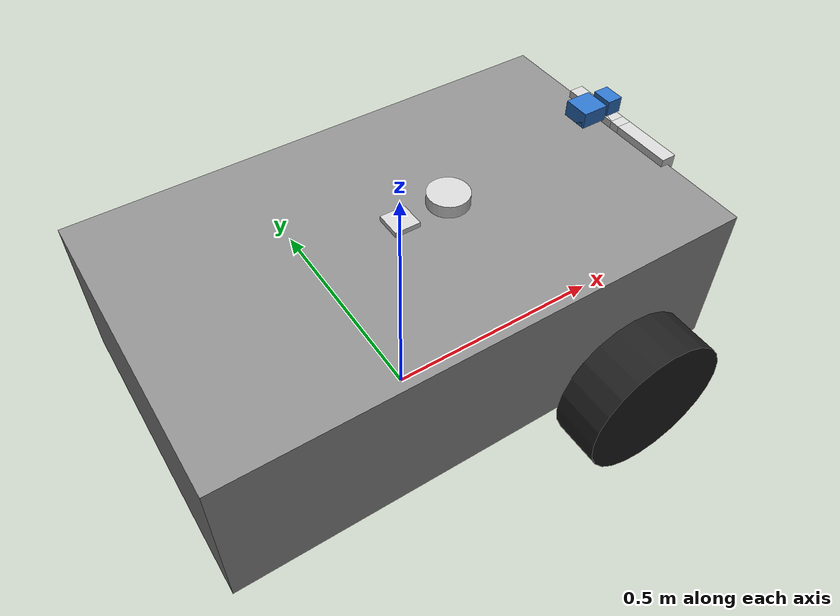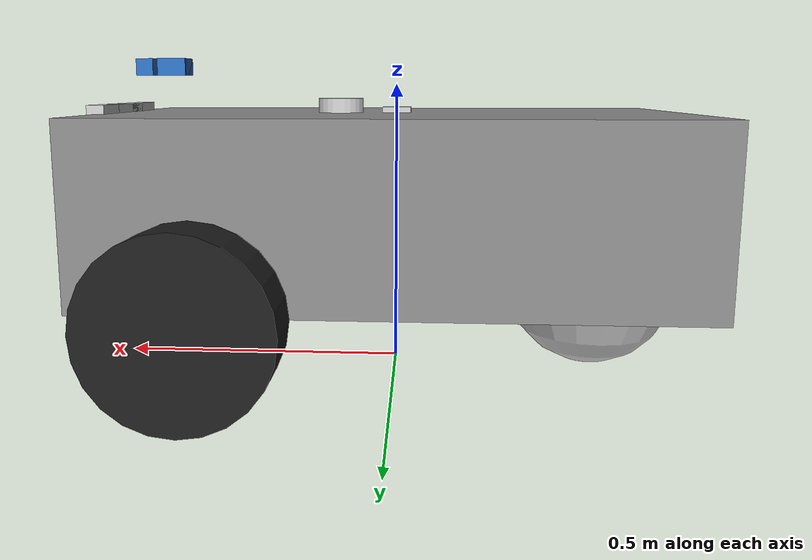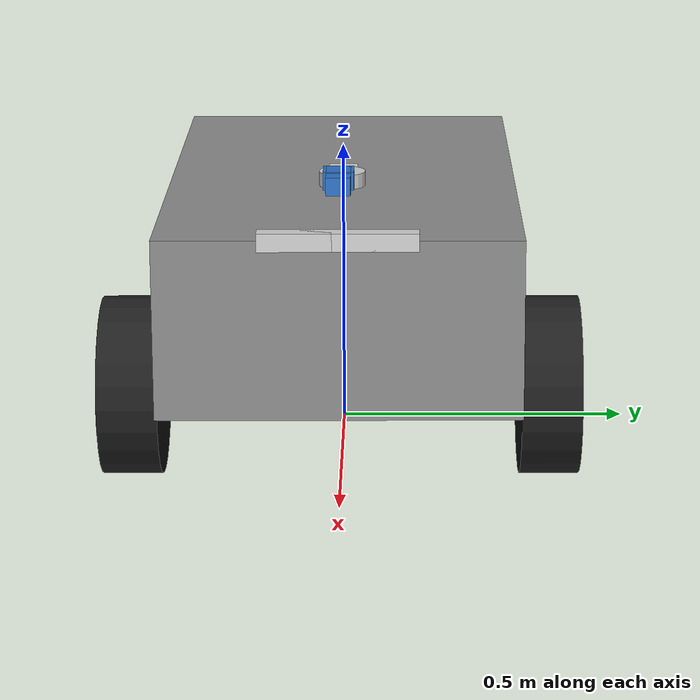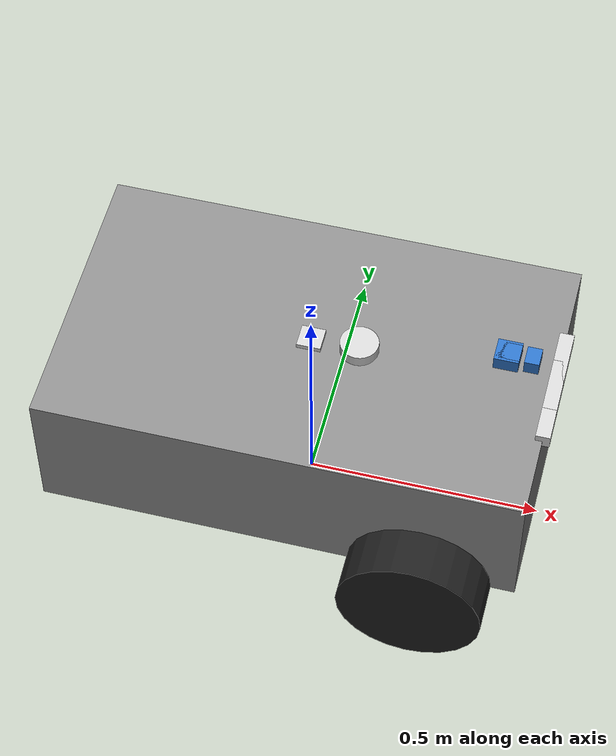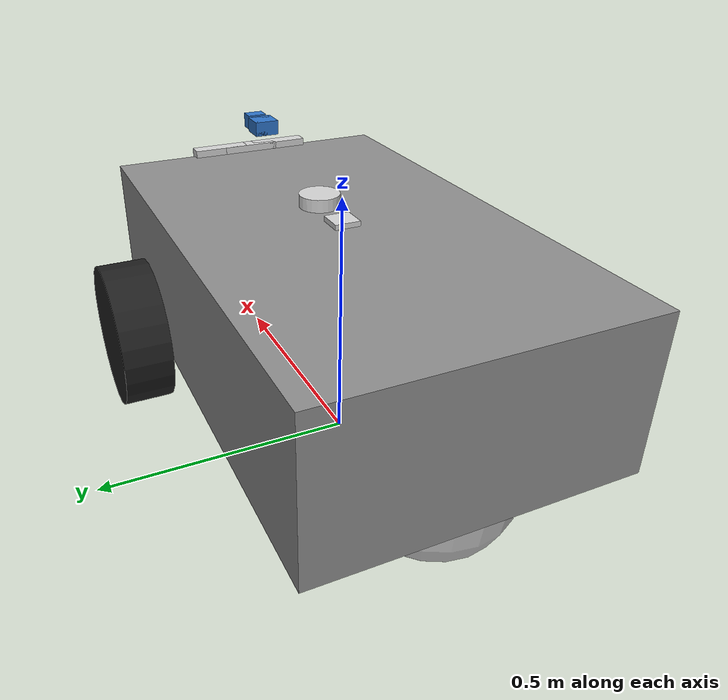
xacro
<?xml version="1.0"?>
<robot xmlns:xacro="http://www.ros.org/wiki/xacro" name="differential_drive_robot">

  <!-- Keep a prefix hook so the model can be reused in multi-robot setups later. -->
  <xacro:property name="prefix" value=""/>
  <xacro:property name="pi_const" value="3.1415926535897931"/>

  <!-- Chassis dimensions. -->
  <xacro:property name="chassis_length" value="1.0"/>
  <xacro:property name="chassis_width" value="0.6"/>
  <xacro:property name="chassis_height" value="0.3"/>

  <!-- Wheel layout. -->
  <xacro:property name="wheel_radius" value="0.15"/>
  <xacro:property name="wheel_width" value="0.10"/>
  <xacro:property name="wheel_x_offset" value="${2.0 * wheel_radius}"/>
  <xacro:property name="wheel_separation" value="${chassis_width + wheel_width}"/>
  <xacro:property name="wheel_y_offset" value="${wheel_separation / 2.0}"/>

  <!-- Sensor layout. -->
  <xacro:property name="caster_radius" value="${wheel_radius}"/>
  <xacro:property name="imu_size_xyz" value="0.05 0.05 0.02"/>
  <xacro:property name="stereo_camera_size_xyz" value="0.03 0.12 0.03"/>
  <xacro:property name="stereo_camera_baseline" value="0.14"/>
  <xacro:property name="stereo_camera_mount_x" value="${chassis_length / 2.0}"/>
  <xacro:property name="stereo_camera_mount_z" value="${wheel_radius + chassis_height}"/>
  <xacro:property name="arducam_pan_initial" value="0.0"/>
  <xacro:property name="arducam_tilt_initial" value="0.0"/>
  <xacro:property name="arducam_horizontal_fov" value="0.78539816339"/>
  <xacro:property name="arducam_pan_mount_x" value="${chassis_length / 2.0 - 0.10}"/>
  <xacro:property name="arducam_pan_mount_z" value="${wheel_radius + chassis_height + 0.08}"/>
  <xacro:property name="arducam_pan_link_size_xyz" value="0.05 0.05 0.03"/>
  <xacro:property name="arducam_tilt_link_size_xyz" value="0.05 0.04 0.03"/>
  <xacro:property name="arducam_camera_link_size_xyz" value="0.03 0.04 0.03"/>
  <xacro:property name="lidar_mount_x" value="0.10"/>
  <xacro:property name="lidar_mount_z" value="${chassis_height + wheel_radius}"/>

  <!-- Mass properties. Densities are grouped so the robot can be rescaled safely. -->
  <xacro:property name="body_density" value="2710.0"/>
  <xacro:property name="wheel_density" value="2710.0"/>
  <xacro:property name="caster_density" value="2710.0"/>
  <xacro:property name="arducam_density" value="1800.0"/>

  <xacro:property name="body_mass" value="${body_density * chassis_length * chassis_width * chassis_height}"/>
  <xacro:property name="wheel_mass" value="${wheel_density * pi_const * wheel_radius * wheel_radius * wheel_width}"/>
  <xacro:property name="caster_mass" value="${caster_density * (4.0 / 3.0) * pi_const * pow(caster_radius, 3)}"/>
  <xacro:property name="arducam_pan_mass" value="${0.18}"/>
  <xacro:property name="arducam_tilt_mass" value="${0.12}"/>
  <xacro:property name="arducam_camera_mass" value="${0.08}"/>

  <xacro:property name="body_z" value="${wheel_radius + chassis_height / 2.0}"/>
  <xacro:property name="imu_z" value="${wheel_radius + chassis_height}"/>
  <xacro:property name="caster_x" value="${-(chassis_length / 2.0 - caster_radius)}"/>

  <!-- Visual materials keep the model readable. -->
  <material name="body_gray">
    <color rgba="0.55 0.55 0.55 1.0"/>
  </material>

  <material name="wheel_black">
    <color rgba="0.12 0.12 0.12 1.0"/>
  </material>

  <material name="sensor_silver">
    <color rgba="0.82 0.82 0.82 1.0"/>
  </material>

  <material name="camera_blue">
    <color rgba="0.18 0.45 0.78 1.0"/>
  </material>

  <xacro:macro name="box_inertial" params="mass x y z origin_xyz:='0 0 0'">
    <inertial>
      <origin xyz="${origin_xyz}" rpy="0 0 0"/>
      <mass value="${mass}"/>
      <inertia
        ixx="${(1.0 / 12.0) * mass * (y * y + z * z)}"
        ixy="0.0"
        ixz="0.0"
        iyy="${(1.0 / 12.0) * mass * (x * x + z * z)}"
        iyz="0.0"
        izz="${(1.0 / 12.0) * mass * (x * x + y * y)}"/>
    </inertial>
  </xacro:macro>

  <xacro:macro name="cylinder_inertial" params="mass radius length axis:='z'">
    <xacro:property name="ixy_axis" value="${(1.0 / 12.0) * mass * (3.0 * radius * radius + length * length)}"/>
    <xacro:property name="iz_axis" value="${0.5 * mass * radius * radius}"/>
    <inertial>
      <origin xyz="0 0 0" rpy="0 0 0"/>
      <mass value="${mass}"/>
      <xacro:if value="${axis == 'z'}">
        <inertia ixx="${ixy_axis}" ixy="0.0" ixz="0.0" iyy="${ixy_axis}" iyz="0.0" izz="${iz_axis}"/>
      </xacro:if>
      <xacro:if value="${axis == 'y'}">
        <inertia ixx="${ixy_axis}" ixy="0.0" ixz="0.0" iyy="${iz_axis}" iyz="0.0" izz="${ixy_axis}"/>
      </xacro:if>
      <xacro:if value="${axis == 'x'}">
        <inertia ixx="${iz_axis}" ixy="0.0" ixz="0.0" iyy="${ixy_axis}" iyz="0.0" izz="${ixy_axis}"/>
      </xacro:if>
    </inertial>
  </xacro:macro>

  <xacro:macro name="sphere_inertial" params="mass radius">
    <xacro:property name="inertia" value="${(2.0 / 5.0) * mass * radius * radius}"/>
    <inertial>
      <origin xyz="0 0 0" rpy="0 0 0"/>
      <mass value="${mass}"/>
      <inertia ixx="${inertia}" ixy="0.0" ixz="0.0" iyy="${inertia}" iyz="0.0" izz="${inertia}"/>
    </inertial>
  </xacro:macro>

  <!-- Small helper to avoid repeating the wheel geometry. -->
  <xacro:macro name="wheel_link" params="name">
    <link name="${name}">
      <visual>
        <origin xyz="0 0 0" rpy="1.57079632679 0 0"/>
        <geometry>
          <cylinder radius="${wheel_radius}" length="${wheel_width}"/>
        </geometry>
        <material name="wheel_black"/>
      </visual>
      <collision>
        <origin xyz="0 0 0" rpy="1.57079632679 0 0"/>
        <geometry>
          <cylinder radius="${wheel_radius}" length="${wheel_width}"/>
        </geometry>
      </collision>
      <xacro:cylinder_inertial mass="${wheel_mass}" radius="${wheel_radius}" length="${wheel_width}" axis="y"/>
    </link>
  </xacro:macro>

  <!-- Keep the Gazebo-specific systems separate from the base robot description. -->
  <xacro:include filename="robot.gazebo"/>

  <link name="${prefix}base_footprint"/>

  <joint name="${prefix}body_link_joint" type="fixed">
    <parent link="${prefix}base_footprint"/>
    <child link="${prefix}body_link"/>
  </joint>

  <link name="${prefix}body_link">
    <visual>
      <origin xyz="0 0 ${body_z}" rpy="0 0 0"/>
      <geometry>
        <box size="${chassis_length} ${chassis_width} ${chassis_height}"/>
      </geometry>
      <material name="body_gray"/>
    </visual>
    <collision>
      <origin xyz="0 0 ${body_z}" rpy="0 0 0"/>
      <geometry>
        <box size="${chassis_length} ${chassis_width} ${chassis_height}"/>
      </geometry>
    </collision>
    <xacro:box_inertial
      mass="${body_mass}"
      x="${chassis_length}"
      y="${chassis_width}"
      z="${chassis_height}"
      origin_xyz="0 0 ${body_z}"/>
  </link>

  <joint name="${prefix}wheel1_joint" type="continuous">
    <parent link="${prefix}body_link"/>
    <child link="${prefix}wheel1_link"/>
    <origin xyz="${wheel_x_offset} ${-wheel_y_offset} ${wheel_radius}" rpy="0 0 0"/>
    <axis xyz="0 1 0"/>
    <limit effort="50000" velocity="10"/>
    <dynamics damping="1.0" friction="0.1"/>
  </joint>

  <xacro:wheel_link name="${prefix}wheel1_link"/>

  <joint name="${prefix}wheel2_joint" type="continuous">
    <parent link="${prefix}body_link"/>
    <child link="${prefix}wheel2_link"/>
    <origin xyz="${wheel_x_offset} ${wheel_y_offset} ${wheel_radius}" rpy="0 0 0"/>
    <axis xyz="0 1 0"/>
    <limit effort="50000" velocity="10"/>
    <dynamics damping="1.0" friction="0.1"/>
  </joint>

  <xacro:wheel_link name="${prefix}wheel2_link"/>

  <link name="${prefix}caster_link">
    <visual>
      <geometry>
        <sphere radius="${caster_radius}"/>
      </geometry>
      <material name="sensor_silver"/>
    </visual>
    <collision>
      <geometry>
        <sphere radius="${caster_radius}"/>
      </geometry>
    </collision>
    <xacro:sphere_inertial mass="${caster_mass}" radius="${caster_radius}"/>
  </link>

  <joint name="${prefix}caster_joint" type="fixed">
    <parent link="${prefix}body_link"/>
    <child link="${prefix}caster_link"/>
    <origin xyz="${caster_x} 0 ${caster_radius}" rpy="0 0 0"/>
  </joint>

  <link name="${prefix}imu_link">
    <visual>
      <geometry>
        <box size="${imu_size_xyz}"/>
      </geometry>
      <material name="sensor_silver"/>
    </visual>
  </link>

  <joint name="${prefix}imu_joint" type="fixed">
    <parent link="${prefix}body_link"/>
    <child link="${prefix}imu_link"/>
    <origin xyz="0 0 ${imu_z}" rpy="0 0 0"/>
  </joint>

  <!-- Magnetometer stays on the IMU mount so the simulation exposes a 9-DOF sensor suite. -->
  <link name="${prefix}stereo_camera_mount_link">
    <visual>
      <geometry>
        <box size="${stereo_camera_size_xyz}"/>
      </geometry>
      <material name="sensor_silver"/>
    </visual>
  </link>

  <joint name="${prefix}stereo_camera_joint" type="fixed">
    <parent link="${prefix}body_link"/>
    <child link="${prefix}stereo_camera_mount_link"/>
    <origin xyz="${stereo_camera_mount_x} 0 ${stereo_camera_mount_z}" rpy="0 0 0"/>
  </joint>

  <link name="${prefix}stereo_left_camera_link">
    <visual>
      <geometry>
        <box size="${stereo_camera_size_xyz}"/>
      </geometry>
      <material name="sensor_silver"/>
    </visual>
  </link>

  <joint name="${prefix}stereo_left_camera_joint" type="fixed">
    <parent link="${prefix}stereo_camera_mount_link"/>
    <child link="${prefix}stereo_left_camera_link"/>
    <origin xyz="0 ${stereo_camera_baseline / 2.0} 0" rpy="0 0 0"/>
  </joint>

  <link name="${prefix}stereo_left_camera_optical_frame"/>

  <joint name="${prefix}stereo_left_camera_optical_joint" type="fixed">
    <parent link="${prefix}stereo_left_camera_link"/>
    <child link="${prefix}stereo_left_camera_optical_frame"/>
    <origin xyz="0 0 0" rpy="${-pi_const / 2.0} 0 ${-pi_const / 2.0}"/>
  </joint>

  <link name="${prefix}stereo_right_camera_link">
    <visual>
      <geometry>
        <box size="${stereo_camera_size_xyz}"/>
      </geometry>
      <material name="sensor_silver"/>
    </visual>
  </link>

  <joint name="${prefix}stereo_right_camera_joint" type="fixed">
    <parent link="${prefix}stereo_camera_mount_link"/>
    <child link="${prefix}stereo_right_camera_link"/>
    <origin xyz="0 ${-stereo_camera_baseline / 2.0} 0" rpy="0 0 0"/>
  </joint>

  <link name="${prefix}stereo_right_camera_optical_frame"/>

  <joint name="${prefix}stereo_right_camera_optical_joint" type="fixed">
    <parent link="${prefix}stereo_right_camera_link"/>
    <child link="${prefix}stereo_right_camera_optical_frame"/>
    <origin xyz="0 0 0" rpy="${-pi_const / 2.0} 0 ${-pi_const / 2.0}"/>
  </joint>

  <!-- Arducam PTZ assembly.
       Zoom is handled as a configurable horizontal FOV, not a separate actuator. -->
  <link name="${prefix}arducam_pan_link">
    <visual>
      <geometry>
        <box size="${arducam_pan_link_size_xyz}"/>
      </geometry>
      <material name="camera_blue"/>
    </visual>
    <xacro:box_inertial
      mass="${arducam_pan_mass}"
      x="0.05"
      y="0.05"
      z="0.03"/>
  </link>

  <!-- Keep the PTZ branch static in TF for now.
       This avoids RViz transform gaps until we add a dedicated joint controller. -->
  <joint name="${prefix}arducam_pan_joint" type="fixed">
    <parent link="${prefix}body_link"/>
    <child link="${prefix}arducam_pan_link"/>
    <origin xyz="${arducam_pan_mount_x} 0 ${arducam_pan_mount_z}" rpy="0 0 ${arducam_pan_initial}"/>
  </joint>

  <link name="${prefix}arducam_tilt_link">
    <visual>
      <geometry>
        <box size="${arducam_tilt_link_size_xyz}"/>
      </geometry>
      <material name="camera_blue"/>
    </visual>
    <xacro:box_inertial
      mass="${arducam_tilt_mass}"
      x="0.05"
      y="0.04"
      z="0.03"/>
  </link>

  <joint name="${prefix}arducam_tilt_joint" type="fixed">
    <parent link="${prefix}arducam_pan_link"/>
    <child link="${prefix}arducam_tilt_link"/>
    <origin xyz="0 0 0" rpy="0 ${arducam_tilt_initial} 0"/>
  </joint>

  <link name="${prefix}arducam_camera_link">
    <visual>
      <geometry>
        <box size="${arducam_camera_link_size_xyz}"/>
      </geometry>
      <material name="camera_blue"/>
    </visual>
    <xacro:box_inertial
      mass="${arducam_camera_mass}"
      x="0.03"
      y="0.04"
      z="0.03"/>
  </link>

  <joint name="${prefix}arducam_camera_joint" type="fixed">
    <parent link="${prefix}arducam_tilt_link"/>
    <child link="${prefix}arducam_camera_link"/>
    <origin xyz="0.05 0 0" rpy="0 0 0"/>
  </joint>

  <link name="${prefix}arducam_camera_optical_frame"/>

  <joint name="${prefix}arducam_camera_optical_joint" type="fixed">
    <parent link="${prefix}arducam_camera_link"/>
    <child link="${prefix}arducam_camera_optical_frame"/>
    <origin xyz="0 0 0" rpy="${-pi_const / 2.0} 0 ${-pi_const / 2.0}"/>
  </joint>

  <link name="${prefix}lidar_link">
    <visual>
      <geometry>
        <cylinder radius="0.04" length="0.05"/>
      </geometry>
      <material name="sensor_silver"/>
    </visual>
  </link>

  <joint name="${prefix}lidar_joint" type="fixed">
    <parent link="${prefix}body_link"/>
    <child link="${prefix}lidar_link"/>
    <origin xyz="${lidar_mount_x} 0 ${lidar_mount_z}" rpy="0 0 0"/>
  </joint>

</robot>
